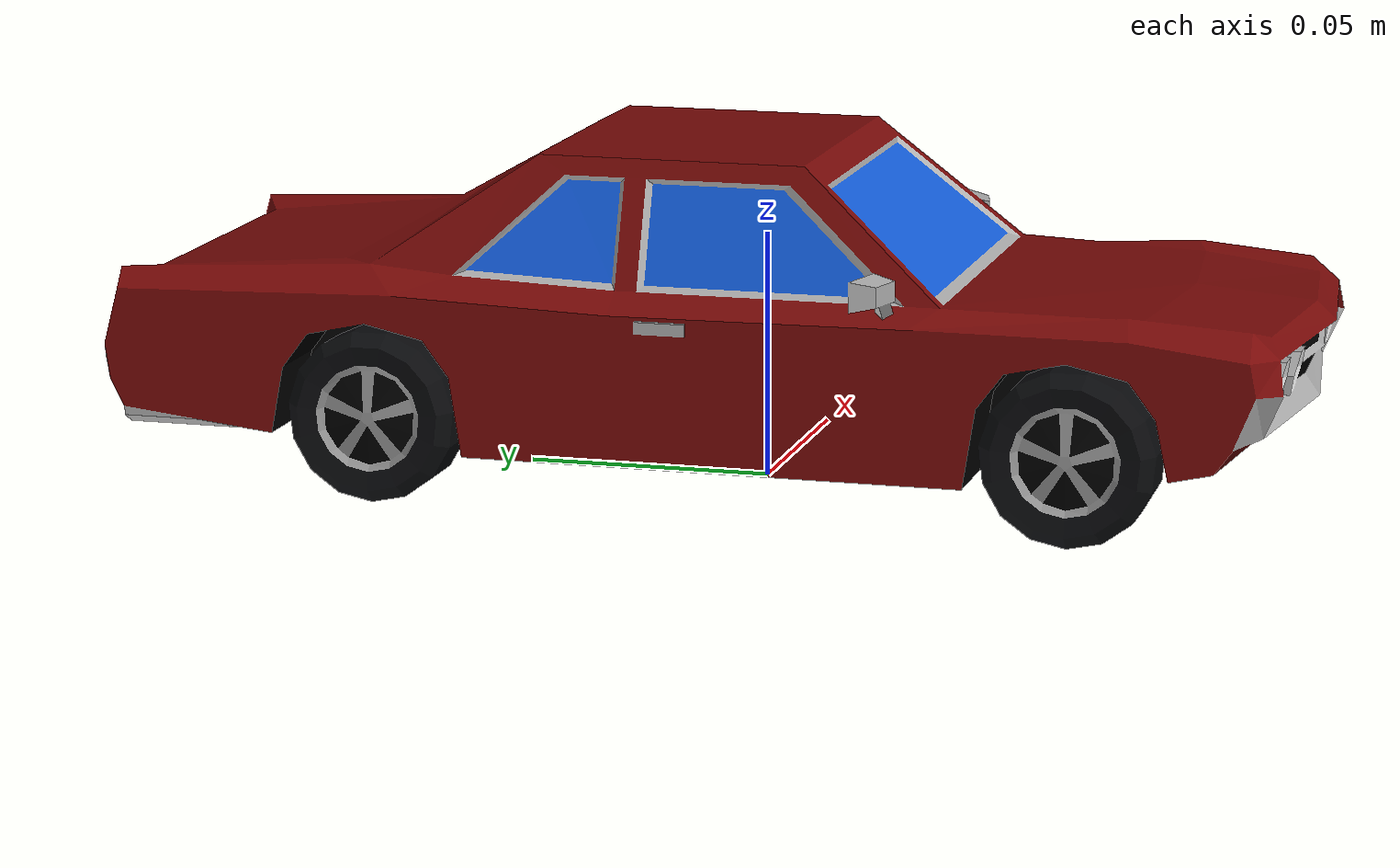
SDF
<?xml version="1.0"?>
<sdf version='1.4'>
  <model name="car_muscle">
      <static>0</static>
      <link name="link">
        <inertial>
          <pose>0 0 0 0 0 0</pose>
          <mass>1.0</mass>
          <inertia>
            <ixx>0.0385483333333</ixx>
            <ixy>000000</ixy>
            <ixz>0.000000</ixz>
            <iyy>0.107087533333</iyy>
            <iyz>0.000000</iyz>
            <izz>0.1243542</izz>
          </inertia>
        </inertial>
        <collision name="collision">
          <pose>0 0 0 0 0 0</pose>
          <geometry>
            <mesh>
                <uri>model://car_muscle/meshes/car_muscle.dae</uri>
                <scale>0.01 0.01 0.01</scale>
            </mesh>
          </geometry>
        </collision>
        <visual name="visual">
          <pose>0 0 0 0 0 0</pose>
          <geometry>
            <mesh>
                <uri>model://car_muscle/meshes/car_muscle.dae</uri>
                <scale>0.05 0.05 0.05</scale>
            </mesh>
          </geometry>
        </visual>
      </link>
    </model>
</sdf>
